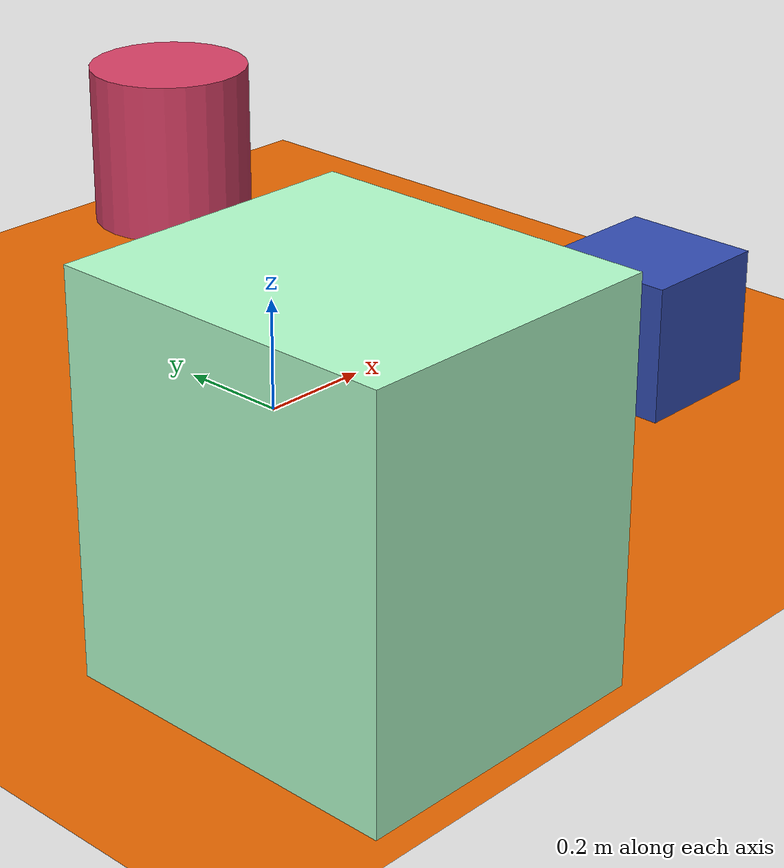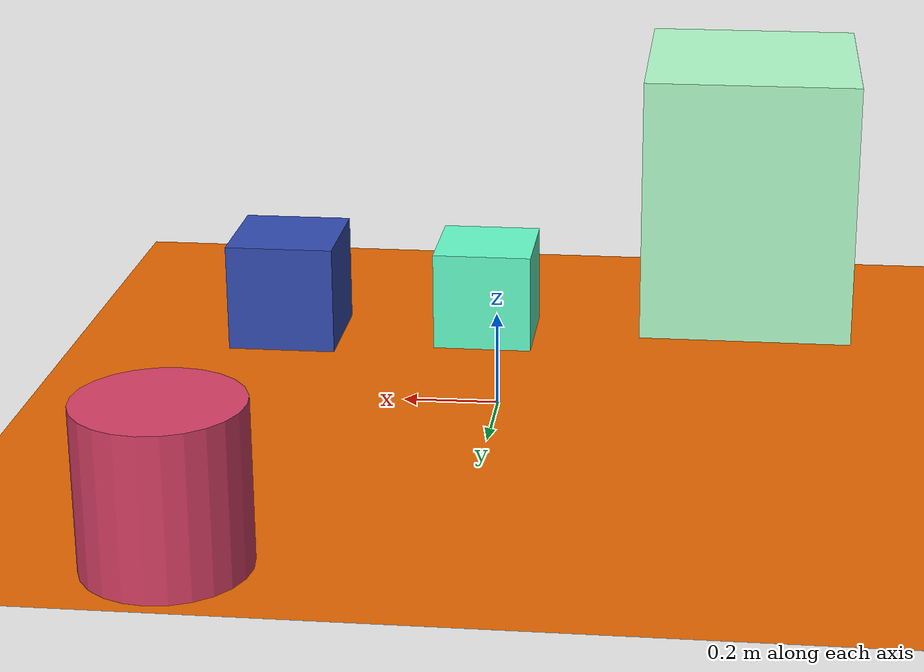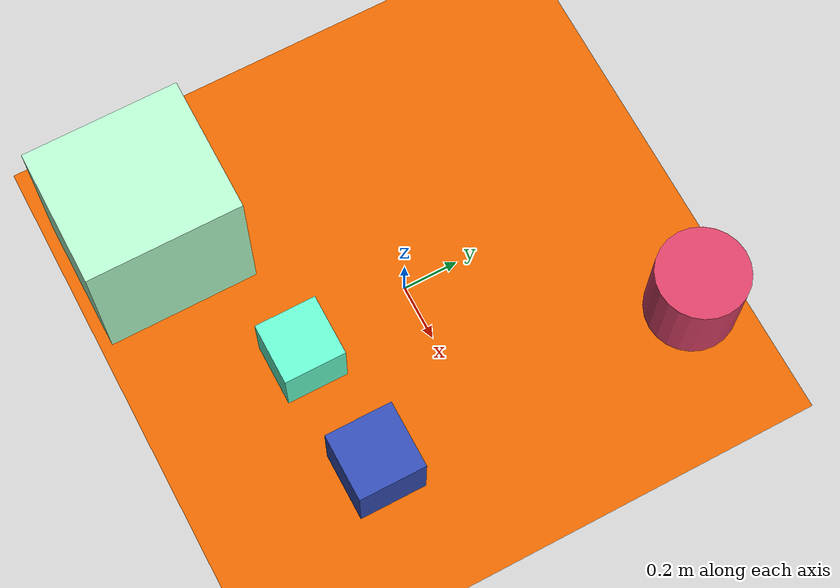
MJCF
<mujoco>
   <asset>
<texture type="skybox" builtin="gradient" rgb1="0.4 0.1 0.9" rgb2="0.2 0.6 0.4" width="256" height="256"/>
<texture name="flat_0" builtin="flat" rgb1="0.4 1.0 0.8" rgb2="0.4 1.0 0.8"  width="200" height="200"/>
<texture name="flat_1" builtin="flat" rgb1="0.7 1.0 0.8" rgb2="0.7 1.0 0.8"  width="200" height="200"/>
<texture name="gradient_2" builtin="gradient" rgb1="0.7 0.1 0.2" rgb2="1.0 0.4 0.6" width="200" height="200"/>
<texture name="checker_3" builtin="checker" type="2d" rgb1="0.1 0.2 0.4" rgb2="0.3 0.4 1.0" width="200" height="200"/><material name="flat_0_mat" reflectance="0" texture="flat_0" texuniform="true"/>
<material name="flat_1_mat" reflectance="0" texture="flat_1" texuniform="true"/>
<material name="gradient_2_mat" reflectance="0" texture="gradient_2" texuniform="true"/>
<material name="checker_3_mat" reflectance="0" texrepeat="4 4" texture="checker_3" texuniform="false" />
   </asset>

   <worldbody>
      <light diffuse=".9 .9 .9" pos="0 0 3" dir="0 0 -1"/>
     <geom type="plane" size="1 1 0.1" rgba="0.9 0.4 0.0 1"/>
<geom type="box" pos="0.07 -0.42 0.11" size="0.11 0.11 0.11" material="flat_0_mat" />
<geom type="box" pos="-0.52 -0.69 0.3" size="0.24 0.27 0.3" material="flat_1_mat" />
<geom type="cylinder" pos="0.51 0.82 0.16" size="0.16 0.16 0.16" material="gradient_2_mat" />
<geom type="box" pos="0.52 -0.38 0.12" size="0.12 0.12 0.12" material="checker_3_mat" /><camera euler="60 0 180" fovy="60" name="camera_a" pos="0 -1.5 1"></camera>   </worldbody>
</mujoco>
